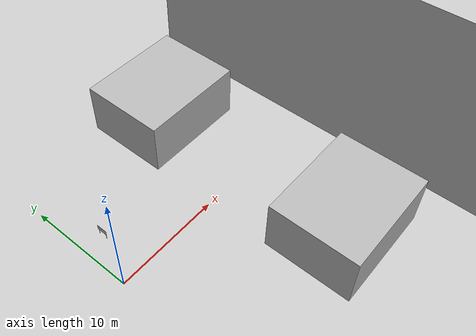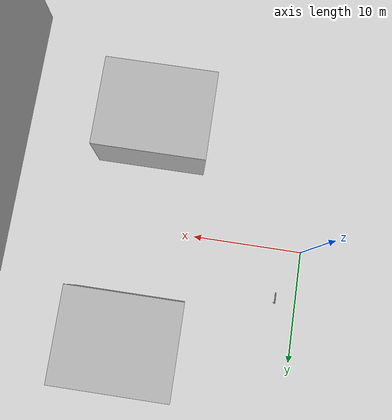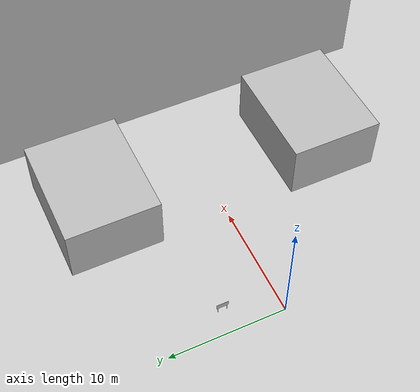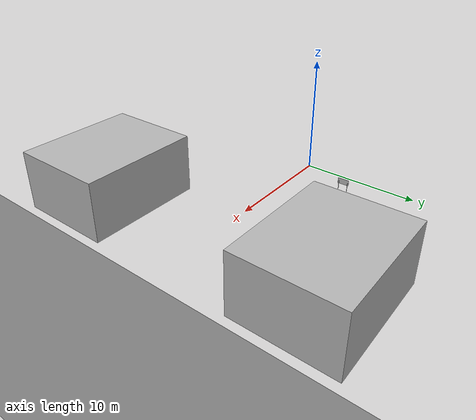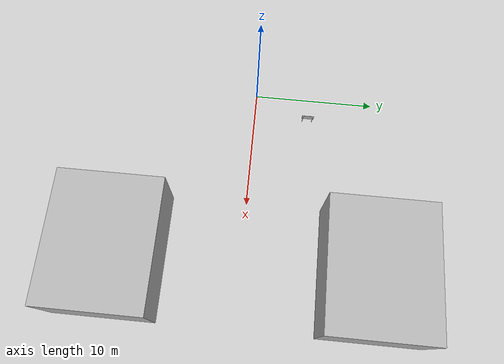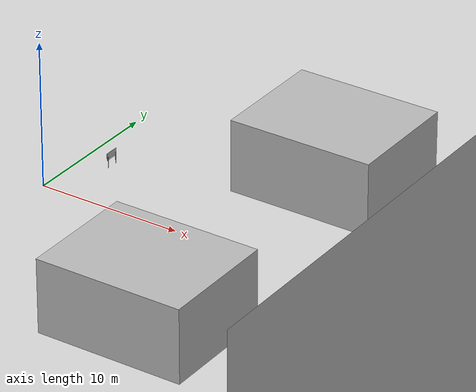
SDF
<gazebo version="1.2">
 <world name="default">
  <scene><ambient>0.2 0.2 0.2 1.0</ambient><grid>false</grid></scene>
  <include><uri>model://sun</uri></include>
  <model name="ground">
   <static>true</static>
   <link name="body">
    <collision name="geom">
     <geometry><plane><normal>0 0 1</normal></plane></geometry>
     <surface><friction><ode><mu>100</mu><mu2>50</mu2></ode></friction></surface>
    </collision>
   </link>
  </model>
  <model name="warehouse">
   <static>true</static>
   <pose>500 10 2.5 0 0 0</pose>
   <link name="link">
    <collision name="collision"><geometry><box><size>100 100 20</size></box></geometry></collision>
    <visual name="visual">
     <geometry><box><size>100 100 20</size></box></geometry>
     <material><script>Gazebo/Grey</script></material>
    </visual>
   </link>
  </model>
  <model name="building_1">
   <static>true</static>
   <pose>15 10 2.5 0 0 0</pose>
   <link name="link">
    <collision name="collision"><geometry><box><size>10 8 5</size></box></geometry></collision>
    <visual name="visual">
     <geometry><box><size>10 8 5</size></box></geometry>
     <material><script>Gazebo/Grey</script></material>
    </visual>
   </link>
  </model>
  <model name="building_2">
   <static>true</static>
   <pose>15 -10 2.5 0 0 0</pose>
   <link name="link">
    <collision name="collision"><geometry><box><size>10 8 5</size></box></geometry></collision>
    <visual name="visual">
     <geometry><box><size>10 8 5</size></box></geometry>
     <material><script>Gazebo/Grey</script></material>
    </visual>
   </link>
  </model>
  <model name="welcom_signe">
   <static>true</static>
   <pose>2 4.5 0 0 0 0</pose>
   <link name="link">
    <collision name="left-post">
     <pose>0.02 0.4  0.4 0 0 0</pose>
     <geometry><cylinder><radius>.02</radius><length>0.8</length></cylinder></geometry>
    </collision>
    <visual name="left-post">
     <pose>0.02 0.4  0.4 0 0 0</pose>
     <geometry><cylinder><radius>.02</radius><length>0.8</length></cylinder></geometry>
     <material><script>Gazebo/Grey</script></material>
    </visual>
    <collision name="right-post">
     <pose>0.02 -0.4 0.4 0 0 0</pose>
     <geometry><cylinder><radius>.02</radius><length>0.8</length></cylinder></geometry>
    </collision>
    <visual name="right-post">
     <pose>0.02 -0.4 0.4 0 0 0</pose>
     <geometry><cylinder><radius>.02</radius><length>0.8</length></cylinder></geometry>
     <material><script>Gazebo/Grey</script></material>
    </visual>
    <collision name="collision">
     <pose>0 0 .8 0 0 0</pose>
     <geometry><box><size>.01 1 .5</size></box></geometry>
    </collision>
    <visual name="visual">
     <pose>0 0 .8 0 0 0</pose>
     <geometry><box><size>.01 1 .5</size></box></geometry>
     <material><script>drc_sim/san_fauxcity_sign</script></material>
    </visual>
   </link>
  </model>
 </world>
</gazebo>
